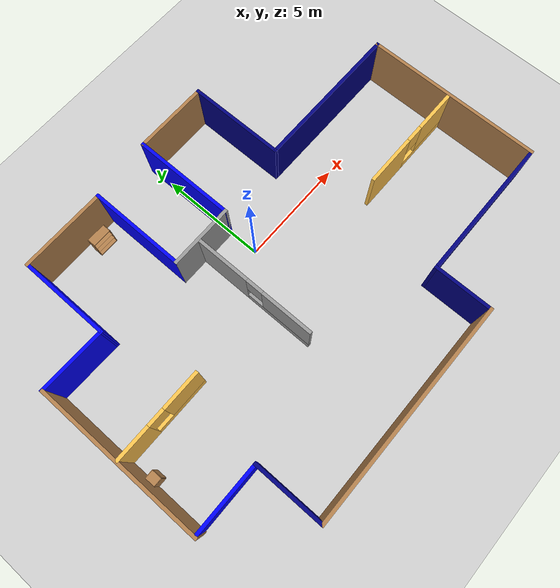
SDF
<sdf version="1.6">
 <world name="default">
  <light name="sun" type="directional">
   <pose>0 0 10 0 -0 0</pose>
   <diffuse>0.8 0.8 0.8 1</diffuse>
   <specular>0.2 0.2 0.2 1</specular>
   <attenuation>
    <range>1000</range>
    <constant>0.9</constant>
    <linear>0.01</linear>
    <quadratic>0.001</quadratic>
   </attenuation>
   <direction>-0.5 0.1 -0.9</direction>
  </light>
  <model name="ground_plane">
   <static>1</static>
   <link name="link">
    <collision name="collision">
     <geometry><plane><normal>0 0 1</normal><size>100 100</size></plane></geometry>
     <surface>
      <contact><collide_bitmask>65535</collide_bitmask></contact>
      <friction><ode><mu>100</mu><mu2>50</mu2></ode></friction>
     </surface>
    </collision>
    <visual name="visual">
     <cast_shadows>0</cast_shadows>
     <geometry><plane><normal>0 0 1</normal><size>100 100</size></plane></geometry>
     <material>
      <script><uri>file://media/materials/scripts/gazebo.material</uri><name>Gazebo/Grey</name></script>
     </material>
    </visual>
   </link>
  </model>
  <gravity>0 0 -9.8</gravity>
  <magnetic_field>6e-06 2.3e-05 -4.2e-05</magnetic_field>
  <atmosphere type="adiabatic"/>
  <physics name="default_physics" default="0" type="ode">
   <max_step_size>0.001</max_step_size>
   <real_time_factor>1</real_time_factor>
   <real_time_update_rate>1000</real_time_update_rate>
  </physics>
  <scene><ambient>0.4 0.4 0.4 1</ambient><background>0.7 0.7 0.7 1</background><shadows>1</shadows></scene>
  <spherical_coordinates>
   <surface_model>EARTH_WGS84</surface_model>
   <latitude_deg>0</latitude_deg>
   <longitude_deg>0</longitude_deg>
   <elevation>0</elevation>
   <heading_deg>0</heading_deg>
  </spherical_coordinates>
  <model name="new_office_world">
   <pose>0.214774 -1.50563 0 0 -0 0</pose>
   <link name="Wall_0">
    <collision name="Wall_0_Collision">
     <geometry><box><size>4.25 0.15 2.5</size></box></geometry>
     <pose>0 0 1.25 0 -0 0</pose>
    </collision>
    <visual name="Wall_0_Visual">
     <pose>0 0 1.25 0 -0 0</pose>
     <geometry><box><size>4.25 0.15 2.5</size></box></geometry>
     <material>
      <script><uri>file://media/materials/scripts/gazebo.material</uri><name>Gazebo/Grey</name></script>
      <ambient>0 0 1 1</ambient>
     </material>
     <meta><layer>0</layer></meta>
    </visual>
    <pose>-6.96601 5.225 0 0 -0 1.5708</pose>
   </link>
   <link name="Wall_1">
    <collision name="Wall_1_Collision">
     <geometry><box><size>4 0.15 2.5</size></box></geometry>
     <pose>0 0 1.25 0 -0 0</pose>
    </collision>
    <visual name="Wall_1_Visual">
     <pose>0 0 1.25 0 -0 0</pose>
     <geometry><box><size>4 0.15 2.5</size></box></geometry>
     <material>
      <script><uri>file://media/materials/scripts/gazebo.material</uri><name>Gazebo/Wood</name></script>
      <ambient>1 1 1 1</ambient>
     </material>
     <meta><layer>0</layer></meta>
    </visual>
    <pose>-5.04101 7.275 0 0 -0 0</pose>
   </link>
   <link name="Wall_10">
    <collision name="Wall_10_Collision">
     <geometry><box><size>2.75 0.15 2.5</size></box></geometry>
     <pose>0 0 1.25 0 -0 0</pose>
    </collision>
    <visual name="Wall_10_Visual">
     <pose>0 0 1.25 0 -0 0</pose>
     <geometry><box><size>2.75 0.15 2.5</size></box></geometry>
     <material>
      <script><uri>file://media/materials/scripts/gazebo.material</uri><name>Gazebo/Grey</name></script>
      <ambient>0 0 0.498039 1</ambient>
     </material>
     <meta><layer>0</layer></meta>
    </visual>
    <pose>3.33399 -6.225 0 0 0 -1.5708</pose>
   </link>
   <link name="Wall_11">
    <collision name="Wall_11_Collision">
     <geometry><box><size>10.25 0.15 2.5</size></box></geometry>
     <pose>0 0 1.25 0 -0 0</pose>
    </collision>
    <visual name="Wall_11_Visual">
     <pose>0 0 1.25 0 -0 0</pose>
     <geometry><box><size>10.25 0.15 2.5</size></box></geometry>
     <material>
      <script><uri>file://media/materials/scripts/gazebo.material</uri><name>Gazebo/Wood</name></script>
      <ambient>1 1 1 1</ambient>
     </material>
     <meta><layer>0</layer></meta>
    </visual>
    <pose>-1.71601 -7.525 0 0 -0 3.14159</pose>
   </link>
   <link name="Wall_12">
    <collision name="Wall_12_Collision">
     <geometry><box><size>3.25 0.15 2.5</size></box></geometry>
     <pose>0 0 1.25 0 -0 0</pose>
    </collision>
    <visual name="Wall_12_Visual">
     <pose>0 0 1.25 0 -0 0</pose>
     <geometry><box><size>3.25 0.15 2.5</size></box></geometry>
     <material>
      <script><uri>file://media/materials/scripts/gazebo.material</uri><name>Gazebo/Grey</name></script>
      <ambient>0 0 0.498039 1</ambient>
     </material>
     <meta><layer>0</layer></meta>
    </visual>
    <pose>-6.76601 -5.975 0 0 -0 1.5708</pose>
   </link>
   <link name="Wall_13">
    <collision name="Wall_13_Collision">
     <geometry><box><size>3.3168 0.15 2.5</size></box></geometry>
     <pose>0 0 1.25 0 -0 0</pose>
    </collision>
    <visual name="Wall_13_Visual">
     <pose>0 0 1.25 0 -0 0</pose>
     <geometry><box><size>3.3168 0.15 2.5</size></box></geometry>
     <material>
      <script><uri>file://media/materials/scripts/gazebo.material</uri><name>Gazebo/Grey</name></script>
      <ambient>0 0 1 1</ambient>
     </material>
     <meta><layer>0</layer></meta>
    </visual>
    <pose>-8.34931 -4.425 0 0 -0 3.14159</pose>
   </link>
   <link name="Wall_14">
    <collision name="Wall_14_Collision">
     <geometry><box><size>7.81661 0.15 2.5</size></box></geometry>
     <pose>0 0 1.25 0 -0 0</pose>
    </collision>
    <visual name="Wall_14_Visual">
     <pose>0 0 1.25 0 -0 0</pose>
     <geometry><box><size>7.81661 0.15 2.5</size></box></geometry>
     <material>
      <script><uri>file://media/materials/scripts/gazebo.material</uri><name>Gazebo/Wood</name></script>
      <ambient>1 1 1 1</ambient>
     </material>
     <meta><layer>0</layer></meta>
    </visual>
    <pose>-9.93262 -0.626874 0 0 -0 1.5708</pose>
   </link>
   <link name="Wall_15">
    <collision name="Wall_15_Collision">
     <geometry><box><size>3.11678 0.15 2.5</size></box></geometry>
     <pose>0 0 1.25 0 -0 0</pose>
    </collision>
    <visual name="Wall_15_Visual">
     <pose>0 0 1.25 0 -0 0</pose>
     <geometry><box><size>3.11678 0.15 2.5</size></box></geometry>
     <material>
      <script><uri>file://media/materials/scripts/gazebo.material</uri><name>Gazebo/Grey</name></script>
      <ambient>0 0 1 1</ambient>
     </material>
     <meta><layer>0</layer></meta>
    </visual>
    <pose>-8.44931 3.2083 0 0 0 -0.022449</pose>
   </link>
   <link name="Wall_2">
    <collision name="Wall_2_Collision">
     <geometry><box><size>4.5 0.15 2.5</size></box></geometry>
     <pose>0 0 1.25 0 -0 0</pose>
    </collision>
    <visual name="Wall_2_Visual">
     <pose>0 0 1.25 0 -0 0</pose>
     <geometry><box><size>4.5 0.15 2.5</size></box></geometry>
     <material>
      <script><uri>file://media/materials/scripts/gazebo.material</uri><name>Gazebo/Grey</name></script>
      <ambient>0 0 1 1</ambient>
     </material>
     <meta><layer>0</layer></meta>
    </visual>
    <pose>-3.11601 5.1 0 0 0 -1.5708</pose>
   </link>
   <link name="Wall_20">
    <pose>-1.85119 -0.023993 0 0 0 -1.5708</pose>
    <visual name="Wall_20_Visual_0">
     <pose>-1.62615 0 1.25 0 -0 0</pose>
     <geometry><box><size>2.4977 0.15 2.5</size></box></geometry>
     <material>
      <script><uri>file://media/materials/scripts/gazebo.material</uri><name>Gazebo/Grey</name></script>
      <ambient>1 1 1 1</ambient>
     </material>
     <meta><layer>0</layer></meta>
    </visual>
    <collision name="Wall_20_Collision_0">
     <geometry><box><size>2.4977 0.15 2.5</size></box></geometry>
     <pose>-1.62615 0 1.25 0 -0 0</pose>
    </collision>
    <visual name="Wall_20_Visual_1">
     <pose>1.24885 0 0.25 0 -0 0</pose>
     <geometry><box><size>3.2523 0.15 0.5</size></box></geometry>
     <material>
      <script><uri>file://media/materials/scripts/gazebo.material</uri><name>Gazebo/Grey</name></script>
      <ambient>1 1 1 1</ambient>
     </material>
     <meta><layer>0</layer></meta>
    </visual>
    <collision name="Wall_20_Collision_1">
     <geometry><box><size>3.2523 0.15 0.5</size></box></geometry>
     <pose>1.24885 0 0.25 0 -0 0</pose>
    </collision>
    <visual name="Wall_20_Visual_2">
     <pose>1.64885 0 1.5 0 -0 0</pose>
     <geometry><box><size>2.4523 0.15 2</size></box></geometry>
     <material>
      <script><uri>file://media/materials/scripts/gazebo.material</uri><name>Gazebo/Grey</name></script>
      <ambient>1 1 1 1</ambient>
     </material>
     <meta><layer>0</layer></meta>
    </visual>
    <collision name="Wall_20_Collision_2">
     <geometry><box><size>2.4523 0.15 2</size></box></geometry>
     <pose>1.64885 0 1.5 0 -0 0</pose>
    </collision>
    <visual name="Wall_20_Visual_3">
     <pose>0.0227 0 1.9 0 -0 0</pose>
     <geometry><box><size>0.8 0.15 1.2</size></box></geometry>
     <material>
      <script><uri>file://media/materials/scripts/gazebo.material</uri><name>Gazebo/Grey</name></script>
      <ambient>1 1 1 1</ambient>
     </material>
     <meta><layer>0</layer></meta>
    </visual>
    <collision name="Wall_20_Collision_3">
     <geometry><box><size>0.8 0.15 1.2</size></box></geometry>
     <pose>0.0227 0 1.9 0 -0 0</pose>
    </collision>
   </link>
   <link name="Wall_22">
    <pose>7.28229 -0.731082 0 0 -0 0</pose>
    <visual name="Wall_22_Visual_0">
     <pose>-1.42347 0 1.25 0 -0 0</pose>
     <geometry><box><size>2.40306 0.15 2.5</size></box></geometry>
     <material>
      <script><uri>file://media/materials/scripts/gazebo.material</uri><name>Gazebo/Grey</name></script>
      <ambient>1 0.764706 0.305882 1</ambient>
     </material>
     <meta><layer>0</layer></meta>
    </visual>
    <collision name="Wall_22_Collision_0">
     <geometry><box><size>2.40306 0.15 2.5</size></box></geometry>
     <pose>-1.42347 0 1.25 0 -0 0</pose>
    </collision>
    <visual name="Wall_22_Visual_1">
     <pose>1.20153 0 0.25 0 -0 0</pose>
     <geometry><box><size>2.84694 0.15 0.5</size></box></geometry>
     <material>
      <script><uri>file://media/materials/scripts/gazebo.material</uri><name>Gazebo/Grey</name></script>
      <ambient>1 0.764706 0.305882 1</ambient>
     </material>
     <meta><layer>0</layer></meta>
    </visual>
    <collision name="Wall_22_Collision_1">
     <geometry><box><size>2.84694 0.15 0.5</size></box></geometry>
     <pose>1.20153 0 0.25 0 -0 0</pose>
    </collision>
    <visual name="Wall_22_Visual_2">
     <pose>1.60153 0 1.5 0 -0 0</pose>
     <geometry><box><size>2.04694 0.15 2</size></box></geometry>
     <material>
      <script><uri>file://media/materials/scripts/gazebo.material</uri><name>Gazebo/Grey</name></script>
      <ambient>1 0.764706 0.305882 1</ambient>
     </material>
     <meta><layer>0</layer></meta>
    </visual>
    <collision name="Wall_22_Collision_2">
     <geometry><box><size>2.04694 0.15 2</size></box></geometry>
     <pose>1.60153 0 1.5 0 -0 0</pose>
    </collision>
    <visual name="Wall_22_Visual_3">
     <pose>0.178064 0 1.9 0 -0 0</pose>
     <geometry><box><size>0.8 0.15 1.2</size></box></geometry>
     <material>
      <script><uri>file://media/materials/scripts/gazebo.material</uri><name>Gazebo/Grey</name></script>
      <ambient>1 0.764706 0.305882 1</ambient>
     </material>
     <meta><layer>0</layer></meta>
    </visual>
    <collision name="Wall_22_Collision_3">
     <geometry><box><size>0.8 0.15 1.2</size></box></geometry>
     <pose>0.178064 0 1.9 0 -0 0</pose>
    </collision>
   </link>
   <link name="Wall_24">
    <pose>-7.82346 -0.609553 0 0 -0 0</pose>
    <visual name="Wall_24_Visual_0">
     <pose>-1.30249 0 1.25 0 -0 0</pose>
     <geometry><box><size>1.64501 0.15 2.5</size></box></geometry>
     <material>
      <script><uri>file://media/materials/scripts/gazebo.material</uri><name>Gazebo/Grey</name></script>
      <ambient>1 0.764706 0.305882 1</ambient>
     </material>
     <meta><layer>0</layer></meta>
    </visual>
    <collision name="Wall_24_Collision_0">
     <geometry><box><size>1.64501 0.15 2.5</size></box></geometry>
     <pose>-1.30249 0 1.25 0 -0 0</pose>
    </collision>
    <visual name="Wall_24_Visual_1">
     <pose>0.822505 0 0.25 0 -0 0</pose>
     <geometry><box><size>2.60499 0.15 0.5</size></box></geometry>
     <material>
      <script><uri>file://media/materials/scripts/gazebo.material</uri><name>Gazebo/Grey</name></script>
      <ambient>1 0.764706 0.305882 1</ambient>
     </material>
     <meta><layer>0</layer></meta>
    </visual>
    <collision name="Wall_24_Collision_1">
     <geometry><box><size>2.60499 0.15 0.5</size></box></geometry>
     <pose>0.822505 0 0.25 0 -0 0</pose>
    </collision>
    <visual name="Wall_24_Visual_2">
     <pose>1.2225 0 1.5 0 -0 0</pose>
     <geometry><box><size>1.80499 0.15 2</size></box></geometry>
     <material>
      <script><uri>file://media/materials/scripts/gazebo.material</uri><name>Gazebo/Grey</name></script>
      <ambient>1 0.764706 0.305882 1</ambient>
     </material>
     <meta><layer>0</layer></meta>
    </visual>
    <collision name="Wall_24_Collision_2">
     <geometry><box><size>1.80499 0.15 2</size></box></geometry>
     <pose>1.2225 0 1.5 0 -0 0</pose>
    </collision>
    <visual name="Wall_24_Visual_3">
     <pose>-0.079989 0 1.9 0 -0 0</pose>
     <geometry><box><size>0.8 0.15 1.2</size></box></geometry>
     <material>
      <script><uri>file://media/materials/scripts/gazebo.material</uri><name>Gazebo/Grey</name></script>
      <ambient>1 0.764706 0.305882 1</ambient>
     </material>
     <meta><layer>0</layer></meta>
    </visual>
    <collision name="Wall_24_Collision_3">
     <geometry><box><size>0.8 0.15 1.2</size></box></geometry>
     <pose>-0.079989 0 1.9 0 -0 0</pose>
    </collision>
   </link>
   <link name="Wall_3">
    <collision name="Wall_3_Collision">
     <geometry><box><size>3 0.15 2.5</size></box></geometry>
     <pose>0 0 1.25 0 -0 0</pose>
    </collision>
    <visual name="Wall_3_Visual">
     <pose>0 0 1.25 0 -0 0</pose>
     <geometry><box><size>3 0.15 2.5</size></box></geometry>
     <material>
      <script><uri>file://media/materials/scripts/gazebo.material</uri><name>Gazebo/Grey</name></script>
      <ambient>1 1 1 1</ambient>
     </material>
     <meta><layer>0</layer></meta>
    </visual>
    <pose>-1.69101 2.925 0 0 -0 0</pose>
   </link>
   <link name="Wall_4">
    <collision name="Wall_4_Collision">
     <geometry><box><size>4.75 0.15 2.5</size></box></geometry>
     <pose>0 0 1.25 0 -0 0</pose>
    </collision>
    <visual name="Wall_4_Visual">
     <pose>0 0 1.25 0 -0 0</pose>
     <geometry><box><size>4.75 0.15 2.5</size></box></geometry>
     <material>
      <script><uri>file://media/materials/scripts/gazebo.material</uri><name>Gazebo/Grey</name></script>
      <ambient>0 0 1 1</ambient>
     </material>
     <meta><layer>0</layer></meta>
    </visual>
    <pose>-0.266009 5.225 0 0 -0 1.5708</pose>
   </link>
   <link name="Wall_5">
    <collision name="Wall_5_Collision">
     <geometry><box><size>3.5 0.15 2.5</size></box></geometry>
     <pose>0 0 1.25 0 -0 0</pose>
    </collision>
    <visual name="Wall_5_Visual">
     <pose>0 0 1.25 0 -0 0</pose>
     <geometry><box><size>3.5 0.15 2.5</size></box></geometry>
     <material>
      <script><uri>file://media/materials/scripts/gazebo.material</uri><name>Gazebo/Wood</name></script>
      <ambient>1 1 1 1</ambient>
     </material>
     <meta><layer>0</layer></meta>
    </visual>
    <pose>1.40899 7.525 0 0 -0 0</pose>
   </link>
   <link name="Wall_6">
    <collision name="Wall_6_Collision">
     <geometry><box><size>4.5 0.15 2.5</size></box></geometry>
     <pose>0 0 1.25 0 -0 0</pose>
    </collision>
    <visual name="Wall_6_Visual">
     <pose>0 0 1.25 0 -0 0</pose>
     <geometry><box><size>4.5 0.15 2.5</size></box></geometry>
     <material>
      <script><uri>file://media/materials/scripts/gazebo.material</uri><name>Gazebo/Grey</name></script>
      <ambient>0 0 0.498039 1</ambient>
     </material>
     <meta><layer>0</layer></meta>
    </visual>
    <pose>3.08399 5.35 0 0 0 -1.5708</pose>
   </link>
   <link name="Wall_7">
    <collision name="Wall_7_Collision">
     <geometry><box><size>7 0.15 2.5</size></box></geometry>
     <pose>0 0 1.25 0 -0 0</pose>
    </collision>
    <visual name="Wall_7_Visual">
     <pose>0 0 1.25 0 -0 0</pose>
     <geometry><box><size>7 0.15 2.5</size></box></geometry>
     <material>
      <script><uri>file://media/materials/scripts/gazebo.material</uri><name>Gazebo/Grey</name></script>
      <ambient>0 0 0.498039 1</ambient>
     </material>
     <meta><layer>0</layer></meta>
    </visual>
    <pose>6.50899 3.175 0 0 -0 0</pose>
   </link>
   <link name="Wall_8">
    <collision name="Wall_8_Collision">
     <geometry><box><size>8.25 0.15 2.5</size></box></geometry>
     <pose>0 0 1.25 0 -0 0</pose>
    </collision>
    <visual name="Wall_8_Visual">
     <pose>0 0 1.25 0 -0 0</pose>
     <geometry><box><size>8.25 0.15 2.5</size></box></geometry>
     <material>
      <script><uri>file://media/materials/scripts/gazebo.material</uri><name>Gazebo/Wood</name></script>
      <ambient>1 1 1 1</ambient>
     </material>
     <meta><layer>0</layer></meta>
    </visual>
    <pose>9.93399 -0.875 0 0 0 -1.5708</pose>
   </link>
   <link name="Wall_9">
    <collision name="Wall_9_Collision">
     <geometry><box><size>6.75 0.15 2.5</size></box></geometry>
     <pose>0 0 1.25 0 -0 0</pose>
    </collision>
    <visual name="Wall_9_Visual">
     <pose>0 0 1.25 0 -0 0</pose>
     <geometry><box><size>6.75 0.15 2.5</size></box></geometry>
     <material>
      <script><uri>file://media/materials/scripts/gazebo.material</uri><name>Gazebo/Grey</name></script>
      <ambient>0 0 0.498039 1</ambient>
     </material>
     <meta><layer>0</layer></meta>
    </visual>
    <pose>6.63399 -4.925 0 0 -0 3.14159</pose>
   </link>
   <static>1</static>
  </model>
  <model name="bookshelf">
   <static>1</static>
   <link name="link">
    <inertial><mass>1</mass></inertial>
    <collision name="back">
     <pose>0 0.005 0.6 0 -0 0</pose>
     <geometry><box><size>0.9 0.01 1.2</size></box></geometry>
    </collision>
    <visual name="visual1">
     <pose>0 0.005 0.6 0 -0 0</pose>
     <geometry><box><size>0.9 0.01 1.2</size></box></geometry>
     <material>
      <script><uri>file://media/materials/scripts/gazebo.material</uri><name>Gazebo/Wood</name></script>
     </material>
    </visual>
    <collision name="left_side">
     <pose>0.45 -0.195 0.6 0 -0 0</pose>
     <geometry><box><size>0.02 0.4 1.2</size></box></geometry>
    </collision>
    <visual name="visual2">
     <pose>0.45 -0.195 0.6 0 -0 0</pose>
     <geometry><box><size>0.02 0.4 1.2</size></box></geometry>
     <material>
      <script><uri>file://media/materials/scripts/gazebo.material</uri><name>Gazebo/Wood</name></script>
     </material>
    </visual>
    <collision name="right_side">
     <pose>-0.45 -0.195 0.6 0 -0 0</pose>
     <geometry><box><size>0.02 0.4 1.2</size></box></geometry>
    </collision>
    <visual name="visual3">
     <pose>-0.45 -0.195 0.6 0 -0 0</pose>
     <geometry><box><size>0.02 0.4 1.2</size></box></geometry>
     <material>
      <script><uri>file://media/materials/scripts/gazebo.material</uri><name>Gazebo/Wood</name></script>
     </material>
    </visual>
    <collision name="bottom">
     <pose>0 -0.195 0.03 0 -0 0</pose>
     <geometry><box><size>0.88 0.4 0.06</size></box></geometry>
    </collision>
    <visual name="visual4">
     <pose>0 -0.195 0.03 0 -0 0</pose>
     <geometry><box><size>0.88 0.4 0.06</size></box></geometry>
     <material>
      <script><uri>file://media/materials/scripts/gazebo.material</uri><name>Gazebo/Wood</name></script>
     </material>
    </visual>
    <collision name="top">
     <pose>0 -0.195 1.19 0 -0 0</pose>
     <geometry><box><size>0.88 0.4 0.02</size></box></geometry>
    </collision>
    <visual name="visual5">
     <pose>0 -0.195 1.19 0 -0 0</pose>
     <geometry><box><size>0.88 0.4 0.02</size></box></geometry>
     <material>
      <script><uri>file://media/materials/scripts/gazebo.material</uri><name>Gazebo/Wood</name></script>
     </material>
    </visual>
    <collision name="low_shelf">
     <pose>0 -0.195 0.43 0 -0 0</pose>
     <geometry><box><size>0.88 0.4 0.02</size></box></geometry>
    </collision>
    <visual name="visual6">
     <pose>0 -0.195 0.43 0 -0 0</pose>
     <geometry><box><size>0.88 0.4 0.02</size></box></geometry>
     <material>
      <script><uri>file://media/materials/scripts/gazebo.material</uri><name>Gazebo/Wood</name></script>
     </material>
    </visual>
    <collision name="high_shelf">
     <pose>0 -0.195 0.8 0 -0 0</pose>
     <geometry><box><size>0.88 0.4 0.02</size></box></geometry>
    </collision>
    <visual name="visual7">
     <pose>0 -0.195 0.8 0 -0 0</pose>
     <geometry><box><size>0.88 0.4 0.02</size></box></geometry>
     <material>
      <script><uri>file://media/materials/scripts/gazebo.material</uri><name>Gazebo/Wood</name></script>
     </material>
    </visual>
   </link>
   <pose>-3.97028 5.33464 0 0 -0 0</pose>
  </model>
  <model name="cabinet">
   <static>1</static>
   <link name="cabinet_bottom_plate">
    <inertial>
     <pose>0 0 -1 0 -0 0</pose>
     <inertia><ixx>2.05</ixx><ixy>0</ixy><ixz>0</ixz><iyy>2.05</iyy><iyz>0</iyz><izz>2.05</izz></inertia>
     <mass>25</mass>
    </inertial>
    <collision name="cabinet_bottom_plate_geom">
     <pose>0 0 0.01 0 -0 0</pose>
     <geometry><box><size>0.45 0.45 0.02</size></box></geometry>
    </collision>
    <visual name="cabinet_bottom_plate_geom_visual">
     <pose>0 0 0.01 0 -0 0</pose>
     <geometry><box><size>0.45 0.45 0.02</size></box></geometry>
     <material>
      <script><uri>file://media/materials/scripts/gazebo.material</uri><name>Gazebo/Wood</name></script>
     </material>
    </visual>
    <collision name="cabinet_bottom_plate_geom_cabinet_back_plate">
     <pose>0.235 0 0.51 0 -0 0</pose>
     <geometry><box><size>0.02 0.45 1.02</size></box></geometry>
    </collision>
    <visual name="cabinet_bottom_plate_geom_cabinet_back_plate_visual">
     <pose>0.235 0 0.51 0 -0 0</pose>
     <geometry><box><size>0.02 0.45 1.02</size></box></geometry>
     <material>
      <script><uri>file://media/materials/scripts/gazebo.material</uri><name>Gazebo/Wood</name></script>
     </material>
    </visual>
    <collision name="cabinet_bottom_plate_geom_cabinet_left_plate">
     <pose>0 0.235 0.51 0 -0 0</pose>
     <geometry><box><size>0.45 0.02 1.02</size></box></geometry>
    </collision>
    <visual name="cabinet_bottom_plate_geom_cabinet_left_plate_visual">
     <pose>0 0.235 0.51 0 -0 0</pose>
     <geometry><box><size>0.45 0.02 1.02</size></box></geometry>
     <material>
      <script><uri>file://media/materials/scripts/gazebo.material</uri><name>Gazebo/Wood</name></script>
     </material>
    </visual>
    <collision name="cabinet_bottom_plate_geom_cabinet_middle_plate">
     <pose>0 0 0.51 0 -0 0</pose>
     <geometry><box><size>0.45 0.45 0.02</size></box></geometry>
    </collision>
    <visual name="cabinet_bottom_plate_geom_cabinet_middle_plate_visual">
     <pose>0 0 0.51 0 -0 0</pose>
     <geometry><box><size>0.45 0.45 0.02</size></box></geometry>
     <material>
      <script><uri>file://media/materials/scripts/gazebo.material</uri><name>Gazebo/Wood</name></script>
     </material>
    </visual>
    <collision name="cabinet_bottom_plate_geom_cabinet_right_plate">
     <pose>0 -0.235 0.51 0 -0 0</pose>
     <geometry><box><size>0.45 0.02 1.02</size></box></geometry>
    </collision>
    <visual name="cabinet_bottom_plate_geom_cabinet_right_plate_visual">
     <pose>0 -0.235 0.51 0 -0 0</pose>
     <geometry><box><size>0.45 0.02 1.02</size></box></geometry>
     <material>
      <script><uri>file://media/materials/scripts/gazebo.material</uri><name>Gazebo/Wood</name></script>
     </material>
    </visual>
    <collision name="cabinet_bottom_plate_geom_cabinet_top_plate">
     <pose>0 0 1.01 0 -0 0</pose>
     <geometry><box><size>0.45 0.45 0.02</size></box></geometry>
    </collision>
    <visual name="cabinet_bottom_plate_geom_cabinet_top_plate_visual">
     <pose>0 0 1.01 0 -0 0</pose>
     <geometry><box><size>0.45 0.45 0.02</size></box></geometry>
     <material>
      <script><uri>file://media/materials/scripts/gazebo.material</uri><name>Gazebo/Wood</name></script>
     </material>
    </visual>
   </link>
   <pose>-9.47845 -3.29442 0 0 -0 0</pose>
  </model>
 </world>
</sdf>
